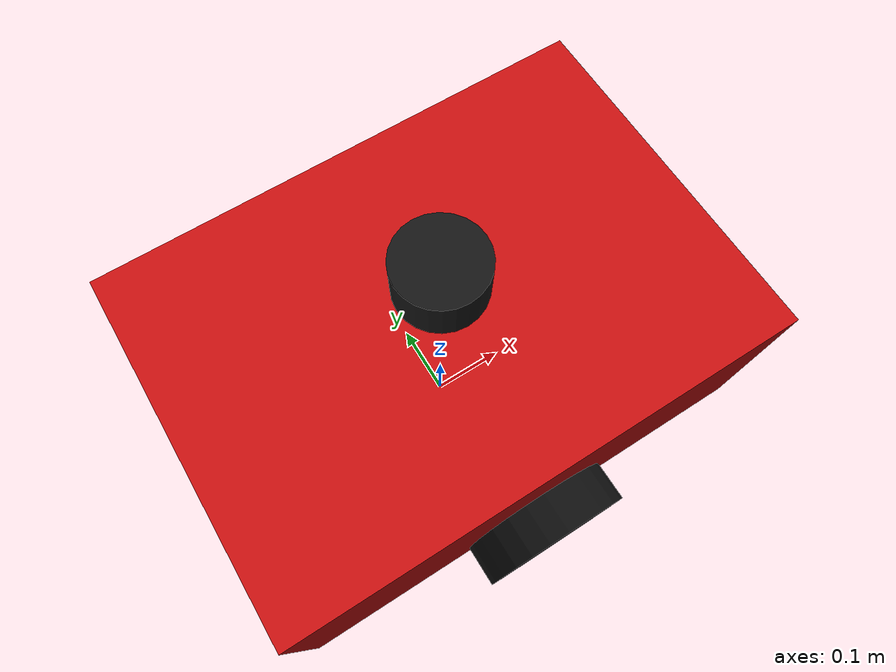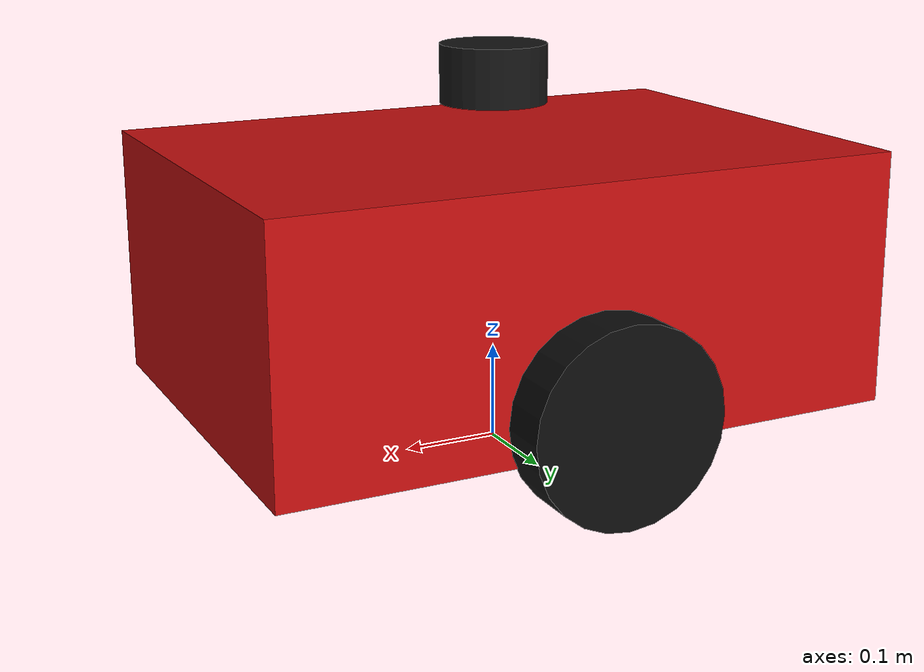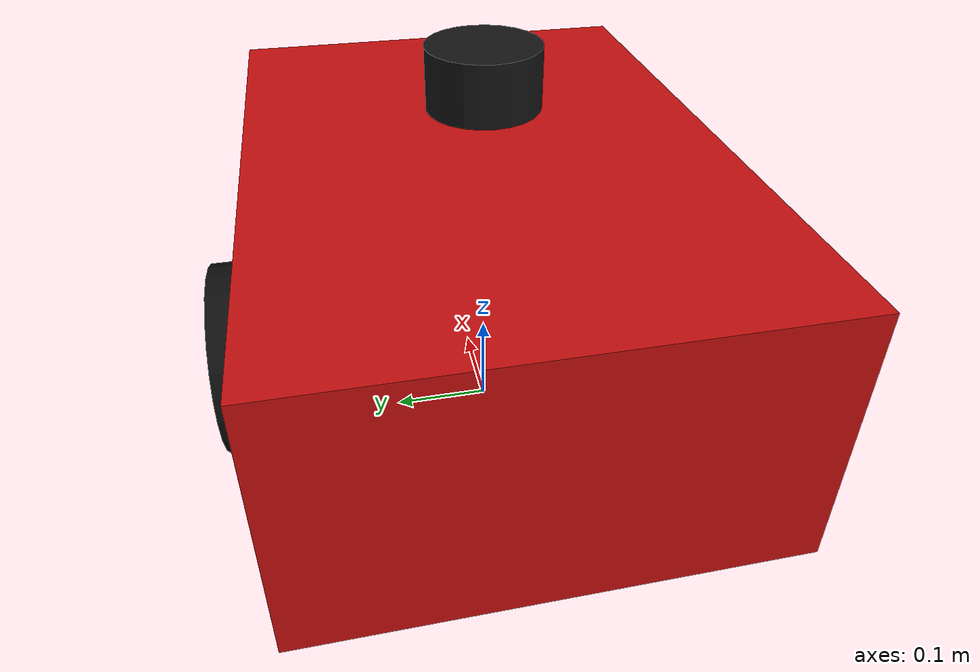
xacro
<?xml version="1.0"?>
<robot xmlns:xacro="http://www.ros.org/wiki/xacro" name="sentry">
  <xacro:property name="wheel_radius" value="0.10"/>
  <xacro:property name="wheel_width" value="0.055"/>
  <xacro:property name="wheel_y" value="0.255"/>

  <link name="base_footprint"/>

  <joint name="base_joint" type="fixed">
    <parent link="base_footprint"/>
    <child link="base_link"/>
    <origin xyz="0 0 0.19"/>
  </joint>

  <link name="base_link">
    <inertial>
      <origin xyz="0 0 0"/>
      <mass value="18.0"/>
      <inertia ixx="0.50" ixy="0" ixz="0" iyy="0.75" iyz="0" izz="0.90"/>
    </inertial>
    <visual>
      <geometry><box size="0.65 0.46 0.26"/></geometry>
      <material name="red"><color rgba="0.78 0.06 0.06 1"/></material>
    </visual>
    <collision>
      <geometry><box size="0.65 0.46 0.26"/></geometry>
    </collision>
  </link>

  <xacro:macro name="wheel" params="side sign">
    <link name="${side}_wheel_link">
      <inertial>
        <mass value="0.8"/>
        <inertia ixx="0.004" ixy="0" ixz="0" iyy="0.004" iyz="0" izz="0.002"/>
      </inertial>
      <visual>
        <origin rpy="1.570796 0 0"/>
        <geometry><cylinder radius="${wheel_radius}" length="${wheel_width}"/></geometry>
        <material name="wheel"><color rgba="0.05 0.05 0.05 1"/></material>
      </visual>
      <collision>
        <origin rpy="1.570796 0 0"/>
        <geometry><cylinder radius="${wheel_radius}" length="${wheel_width}"/></geometry>
      </collision>
    </link>
    <joint name="${side}_wheel_joint" type="continuous">
      <parent link="base_link"/>
      <child link="${side}_wheel_link"/>
      <origin xyz="0 ${sign * wheel_y} -0.09"/>
      <axis xyz="0 1 0"/>
    </joint>
  </xacro:macro>

  <xacro:wheel side="left" sign="1"/>
  <xacro:wheel side="right" sign="-1"/>

  <link name="rear_caster_link">
    <inertial>
      <mass value="0.1"/>
      <inertia ixx="0.0001" ixy="0" ixz="0" iyy="0.0001" iyz="0" izz="0.0001"/>
    </inertial>
    <visual><geometry><sphere radius="0.045"/></geometry></visual>
    <collision><geometry><sphere radius="0.045"/></geometry></collision>
  </link>
  <joint name="rear_caster_joint" type="fixed">
    <parent link="base_link"/>
    <child link="rear_caster_link"/>
    <origin xyz="-0.25 0 -0.145"/>
  </joint>

  <link name="laser_link">
    <inertial>
      <mass value="0.1"/>
      <inertia ixx="0.0001" ixy="0" ixz="0" iyy="0.0001" iyz="0" izz="0.0001"/>
    </inertial>
    <visual>
      <geometry><cylinder radius="0.055" length="0.06"/></geometry>
      <material name="sensor"><color rgba="0.08 0.08 0.08 1"/></material>
    </visual>
  </link>
  <joint name="laser_joint" type="fixed">
    <parent link="base_link"/>
    <child link="laser_link"/>
    <origin xyz="0 0 0.20"/>
  </joint>

  <gazebo reference="base_link"><material>Gazebo/Red</material></gazebo>
  <gazebo reference="left_wheel_link"><material>Gazebo/Black</material></gazebo>
  <gazebo reference="right_wheel_link"><material>Gazebo/Black</material></gazebo>
  <gazebo reference="laser_link">
    <sensor name="lidar" type="gpu_lidar">
      <topic>/scan</topic>
      <gz_frame_id>laser_link</gz_frame_id>
      <update_rate>12</update_rate>
      <always_on>true</always_on>
      <visualize>true</visualize>
      <lidar>
        <scan>
          <horizontal>
            <samples>720</samples>
            <resolution>1</resolution>
            <min_angle>-3.1415926</min_angle>
            <max_angle>3.1415926</max_angle>
          </horizontal>
        </scan>
        <range><min>0.12</min><max>20.0</max><resolution>0.01</resolution></range>
      </lidar>
    </sensor>
  </gazebo>

  <gazebo>
    <plugin filename="gz-sim-diff-drive-system" name="gz::sim::systems::DiffDrive">
      <left_joint>left_wheel_joint</left_joint>
      <right_joint>right_wheel_joint</right_joint>
      <wheel_separation>${2.0 * wheel_y}</wheel_separation>
      <wheel_radius>${wheel_radius}</wheel_radius>
      <topic>/model/sentry/cmd_vel</topic>
      <odom_topic>/model/sentry/odometry</odom_topic>
      <tf_topic>/model/sentry/tf</tf_topic>
      <frame_id>odom</frame_id>
      <child_frame_id>base_footprint</child_frame_id>
      <odom_publish_frequency>30</odom_publish_frequency>
      <max_linear_acceleration>2.0</max_linear_acceleration>
      <max_angular_acceleration>4.0</max_angular_acceleration>
    </plugin>
    <plugin filename="gz-sim-joint-state-publisher-system" name="gz::sim::systems::JointStatePublisher">
      <topic>/world/rm_arena/model/sentry/joint_state</topic>
    </plugin>
  </gazebo>
</robot>
